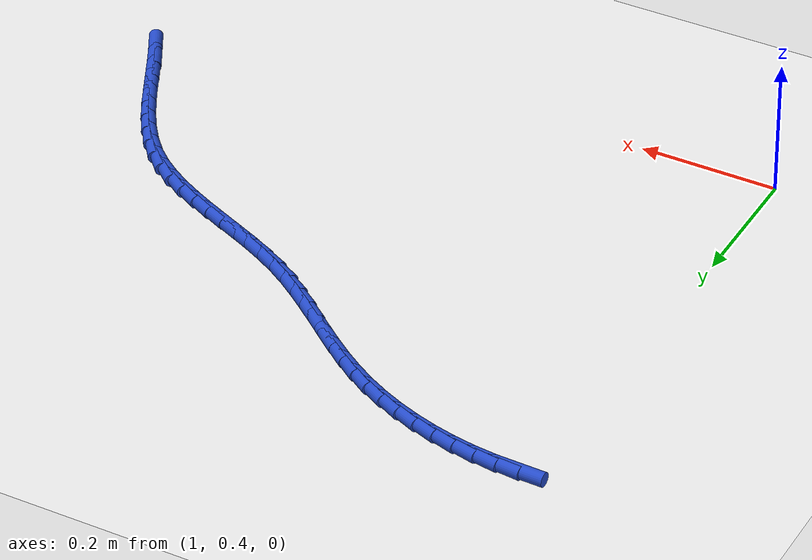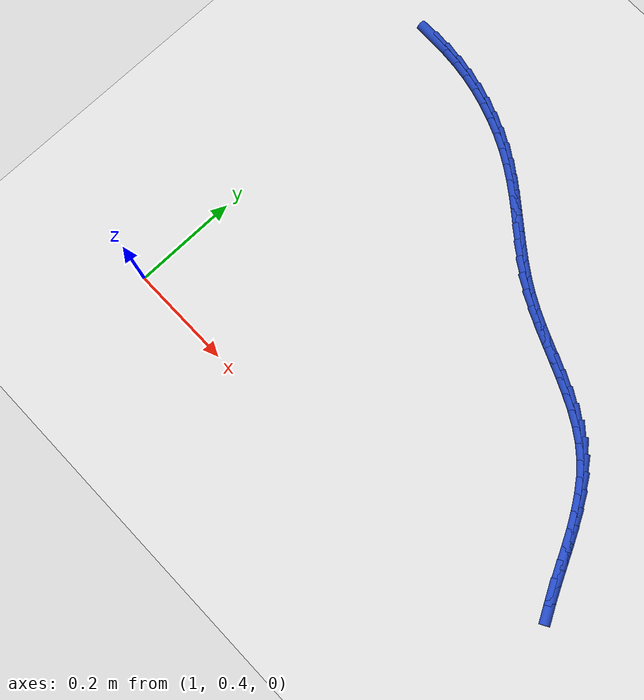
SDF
<sdf version="1.6">
 <world name="default">
  <model name="ground_plane">
   <static>1</static>
   <link name="link">
    <collision name="collision">
     <geometry><plane><normal>0 0 1</normal><size>100 100</size></plane></geometry>
     <surface><friction><ode><mu>100</mu><mu2>50</mu2></ode></friction></surface>
    </collision>
    <visual name="visual">
     <cast_shadows>0</cast_shadows>
     <geometry><plane><normal>0 0 1</normal><size>100 100</size></plane></geometry>
     <material>
      <script><uri>file://media/materials/scripts/gazebo.material</uri><name>Gazebo/WhiteGlow</name></script>
     </material>
    </visual>
   </link>
  </model>
  <model name="line">
   <link name="link_52">
    <pose>1.0297403531845026 1.1076743034539662 0.01 0 1.57 -0.023947935337501752</pose>
    <collision name="collision">
     <geometry><cylinder><radius>0.01</radius><length>0.08</length></cylinder></geometry>
    </collision>
    <visual name="visual">
     <material>
      <script><name>Gazebo/Blue</name><uri>file://media/materials/scripts/gazebo.material</uri></script>
     </material>
     <geometry><cylinder><radius>0.01</radius><length>0.08</length></cylinder></geometry>
    </visual>
   </link>
   <link name="link_53">
    <pose>1.0613806124697045 1.1069164396858013 0.01 0 1.57 -0.09263512583752934</pose>
    <collision name="collision">
     <geometry><cylinder><radius>0.01</radius><length>0.08</length></cylinder></geometry>
    </collision>
    <visual name="visual">
     <material>
      <script><name>Gazebo/Blue</name><uri>file://media/materials/scripts/gazebo.material</uri></script>
     </material>
     <geometry><cylinder><radius>0.01</radius><length>0.08</length></cylinder></geometry>
    </visual>
   </link>
   <link name="link_54">
    <pose>1.093153422103452 1.103964713449809 0.01 0 1.57 -0.15829118914416004</pose>
    <collision name="collision">
     <geometry><cylinder><radius>0.01</radius><length>0.08</length></cylinder></geometry>
    </collision>
    <visual name="visual">
     <material>
      <script><name>Gazebo/Blue</name><uri>file://media/materials/scripts/gazebo.material</uri></script>
     </material>
     <geometry><cylinder><radius>0.01</radius><length>0.08</length></cylinder></geometry>
    </visual>
   </link>
   <link name="link_55">
    <pose>1.124867034798142 1.0989023763803092 0.01 0 1.57 -0.22163496721484707</pose>
    <collision name="collision">
     <geometry><cylinder><radius>0.01</radius><length>0.08</length></cylinder></geometry>
    </collision>
    <visual name="visual">
     <material>
      <script><name>Gazebo/Blue</name><uri>file://media/materials/scripts/gazebo.material</uri></script>
     </material>
     <geometry><cylinder><radius>0.01</radius><length>0.08</length></cylinder></geometry>
    </visual>
   </link>
   <link name="link_56">
    <pose>1.1563297032661723 1.091812680111622 0.01 0 1.57 -0.2833873491306156</pose>
    <collision name="collision">
     <geometry><cylinder><radius>0.01</radius><length>0.08</length></cylinder></geometry>
    </collision>
    <visual name="visual">
     <material>
      <script><name>Gazebo/Blue</name><uri>file://media/materials/scripts/gazebo.material</uri></script>
     </material>
     <geometry><cylinder><radius>0.01</radius><length>0.08</length></cylinder></geometry>
    </visual>
   </link>
   <link name="link_57">
    <pose>1.1873496802199381 1.0827788762780668 0.01 0 1.57 -0.34426916223466975</pose>
    <collision name="collision">
     <geometry><cylinder><radius>0.01</radius><length>0.08</length></cylinder></geometry>
    </collision>
    <visual name="visual">
     <material>
      <script><name>Gazebo/Blue</name><uri>file://media/materials/scripts/gazebo.material</uri></script>
     </material>
     <geometry><cylinder><radius>0.01</radius><length>0.08</length></cylinder></geometry>
    </visual>
   </link>
   <link name="link_58">
    <pose>1.2177352183718386 1.0718842165139653 0.01 0 1.57 -0.40500525535311727</pose>
    <collision name="collision">
     <geometry><cylinder><radius>0.01</radius><length>0.08</length></cylinder></geometry>
    </collision>
    <visual name="visual">
     <material>
      <script><name>Gazebo/Blue</name><uri>file://media/materials/scripts/gazebo.material</uri></script>
     </material>
     <geometry><cylinder><radius>0.01</radius><length>0.08</length></cylinder></geometry>
    </visual>
   </link>
   <link name="link_59">
    <pose>1.2472945704342693 1.0592119524536365 0.01 0 1.57 -0.4663322243100996</pose>
    <collision name="collision">
     <geometry><cylinder><radius>0.01</radius><length>0.08</length></cylinder></geometry>
    </collision>
    <visual name="visual">
     <material>
      <script><name>Gazebo/Blue</name><uri>file://media/materials/scripts/gazebo.material</uri></script>
     </material>
     <geometry><cylinder><radius>0.01</radius><length>0.08</length></cylinder></geometry>
    </visual>
   </link>
   <link name="link_60">
    <pose>1.2758359891196285 1.044845335731401 0.01 0 1.57 -0.5289509135889633</pose>
    <collision name="collision">
     <geometry><cylinder><radius>0.01</radius><length>0.08</length></cylinder></geometry>
    </collision>
    <visual name="visual">
     <material>
      <script><name>Gazebo/Blue</name><uri>file://media/materials/scripts/gazebo.material</uri></script>
     </material>
     <geometry><cylinder><radius>0.01</radius><length>0.08</length></cylinder></geometry>
    </visual>
   </link>
   <link name="link_61">
    <pose>1.3031695011801545 1.028868661734508 0.01 0 1.57 -0.5879392882483317</pose>
    <collision name="collision">
     <geometry><cylinder><radius>0.01</radius><length>0.08</length></cylinder></geometry>
    </collision>
    <visual name="visual">
     <material>
      <script><name>Gazebo/Blue</name><uri>file://media/materials/scripts/gazebo.material</uri></script>
     </material>
     <geometry><cylinder><radius>0.01</radius><length>0.08</length></cylinder></geometry>
    </visual>
   </link>
   <link name="link_62">
    <pose>1.3292759695310825 1.0114667369781303 0.01 0 1.57 -0.6327775586561226</pose>
    <collision name="collision">
     <geometry><cylinder><radius>0.01</radius><length>0.08</length></cylinder></geometry>
    </collision>
    <visual name="visual">
     <material>
      <script><name>Gazebo/Blue</name><uri>file://media/materials/scripts/gazebo.material</uri></script>
     </material>
     <geometry><cylinder><radius>0.01</radius><length>0.08</length></cylinder></geometry>
    </visual>
   </link>
   <link name="link_63">
    <pose>1.3544467552334647 0.9930070489643389 0.01 0 1.57 -0.6617763972199897</pose>
    <collision name="collision">
     <geometry><cylinder><radius>0.01</radius><length>0.08</length></cylinder></geometry>
    </collision>
    <visual name="visual">
     <material>
      <script><name>Gazebo/Blue</name><uri>file://media/materials/scripts/gazebo.material</uri></script>
     </material>
     <geometry><cylinder><radius>0.01</radius><length>0.08</length></cylinder></geometry>
    </visual>
   </link>
   <link name="link_64">
    <pose>1.379006091449195 0.9738764254325137 0.01 0 1.57 -0.6746664620363154</pose>
    <collision name="collision">
     <geometry><cylinder><radius>0.01</radius><length>0.08</length></cylinder></geometry>
    </collision>
    <visual name="visual">
     <material>
      <script><name>Gazebo/Blue</name><uri>file://media/materials/scripts/gazebo.material</uri></script>
     </material>
     <geometry><cylinder><radius>0.01</radius><length>0.08</length></cylinder></geometry>
    </visual>
   </link>
   <link name="link_65">
    <pose>1.4032782113401683 0.9544616941220333 0.01 0 1.57 -0.6713379799891075</pose>
    <collision name="collision">
     <geometry><cylinder><radius>0.01</radius><length>0.08</length></cylinder></geometry>
    </collision>
    <visual name="visual">
     <material>
      <script><name>Gazebo/Blue</name><uri>file://media/materials/scripts/gazebo.material</uri></script>
     </material>
     <geometry><cylinder><radius>0.01</radius><length>0.08</length></cylinder></geometry>
    </visual>
   </link>
   <link name="link_66">
    <pose>1.427587348068279 0.9351496827722756 0.01 0 1.57 -0.6517426442098071</pose>
    <collision name="collision">
     <geometry><cylinder><radius>0.01</radius><length>0.08</length></cylinder></geometry>
    </collision>
    <visual name="visual">
     <material>
      <script><name>Gazebo/Blue</name><uri>file://media/materials/scripts/gazebo.material</uri></script>
     </material>
     <geometry><cylinder><radius>0.01</radius><length>0.08</length></cylinder></geometry>
    </visual>
   </link>
   <link name="link_67">
    <pose>1.4522577347954202 0.9163272191226197 0.01 0 1.57 -0.6159207751072725</pose>
    <collision name="collision">
     <geometry><cylinder><radius>0.01</radius><length>0.08</length></cylinder></geometry>
    </collision>
    <visual name="visual">
     <material>
      <script><name>Gazebo/Blue</name><uri>file://media/materials/scripts/gazebo.material</uri></script>
     </material>
     <geometry><cylinder><radius>0.01</radius><length>0.08</length></cylinder></geometry>
    </visual>
   </link>
   <link name="link_68">
    <pose>1.477613604683487 0.8983811309124442 0.01 0 1.57 -0.5641545823564459</pose>
    <collision name="collision">
     <geometry><cylinder><radius>0.01</radius><length>0.08</length></cylinder></geometry>
    </collision>
    <visual name="visual">
     <material>
      <script><name>Gazebo/Blue</name><uri>file://media/materials/scripts/gazebo.material</uri></script>
     </material>
     <geometry><cylinder><radius>0.01</radius><length>0.08</length></cylinder></geometry>
    </visual>
   </link>
   <link name="link_69">
    <pose>1.5039791908943738 0.8816982458811271 0.01 0 1.57 -0.5023420362251353</pose>
    <collision name="collision">
     <geometry><cylinder><radius>0.01</radius><length>0.08</length></cylinder></geometry>
    </collision>
    <visual name="visual">
     <material>
      <script><name>Gazebo/Blue</name><uri>file://media/materials/scripts/gazebo.material</uri></script>
     </material>
     <geometry><cylinder><radius>0.01</radius><length>0.08</length></cylinder></geometry>
    </visual>
   </link>
   <link name="link_70">
    <pose>1.5315708380627264 0.8665408462534969 0.01 0 1.57 -0.4533530131407078</pose>
    <collision name="collision">
     <geometry><cylinder><radius>0.01</radius><length>0.08</length></cylinder></geometry>
    </collision>
    <visual name="visual">
     <material>
      <script><name>Gazebo/Blue</name><uri>file://media/materials/scripts/gazebo.material</uri></script>
     </material>
     <geometry><cylinder><radius>0.01</radius><length>0.08</length></cylinder></geometry>
    </visual>
   </link>
   <link name="link_71">
    <pose>1.5601323743781133 0.8526257456555674 0.01 0 1.57 -0.4225574086660792</pose>
    <collision name="collision">
     <geometry><cylinder><radius>0.01</radius><length>0.08</length></cylinder></geometry>
    </collision>
    <visual name="visual">
     <material>
      <script><name>Gazebo/Blue</name><uri>file://media/materials/scripts/gazebo.material</uri></script>
     </material>
     <geometry><cylinder><radius>0.01</radius><length>0.08</length></cylinder></geometry>
    </visual>
   </link>
   <link name="link_72">
    <pose>1.5892783046387884 0.8395204679906594 0.01 0 1.57 -0.409247569291799</pose>
    <collision name="collision">
     <geometry><cylinder><radius>0.01</radius><length>0.08</length></cylinder></geometry>
    </collision>
    <visual name="visual">
     <material>
      <script><name>Gazebo/Blue</name><uri>file://media/materials/scripts/gazebo.material</uri></script>
     </material>
     <geometry><cylinder><radius>0.01</radius><length>0.08</length></cylinder></geometry>
    </visual>
   </link>
   <link name="link_73">
    <pose>1.6186231303814946 0.8267925333970341 0.01 0 1.57 -0.41316866610967945</pose>
    <collision name="collision">
     <geometry><cylinder><radius>0.01</radius><length>0.08</length></cylinder></geometry>
    </collision>
    <visual name="visual">
     <material>
      <script><name>Gazebo/Blue</name><uri>file://media/materials/scripts/gazebo.material</uri></script>
     </material>
     <geometry><cylinder><radius>0.01</radius><length>0.08</length></cylinder></geometry>
    </visual>
   </link>
   <link name="link_74">
    <pose>1.6477813531429721 0.8140094620129519 0.01 0 1.57 -0.43462878144800776</pose>
    <collision name="collision">
     <geometry><cylinder><radius>0.01</radius><length>0.08</length></cylinder></geometry>
    </collision>
    <visual name="visual">
     <material>
      <script><name>Gazebo/Blue</name><uri>file://media/materials/scripts/gazebo.material</uri></script>
     </material>
     <geometry><cylinder><radius>0.01</radius><length>0.08</length></cylinder></geometry>
    </visual>
   </link>
   <link name="link_75">
    <pose>1.6763674744599635 0.8007387739766741 0.01 0 1.57 -0.47449054257750406</pose>
    <collision name="collision">
     <geometry><cylinder><radius>0.01</radius><length>0.08</length></cylinder></geometry>
    </collision>
    <visual name="visual">
     <material>
      <script><name>Gazebo/Blue</name><uri>file://media/materials/scripts/gazebo.material</uri></script>
     </material>
     <geometry><cylinder><radius>0.01</radius><length>0.08</length></cylinder></geometry>
    </visual>
   </link>
   <link name="link_76">
    <pose>1.703995995869212 0.7865479894264616 0.01 0 1.57 -0.5340201581267852</pose>
    <collision name="collision">
     <geometry><cylinder><radius>0.01</radius><length>0.08</length></cylinder></geometry>
    </collision>
    <visual name="visual">
     <material>
      <script><name>Gazebo/Blue</name><uri>file://media/materials/scripts/gazebo.material</uri></script>
     </material>
     <geometry><cylinder><radius>0.01</radius><length>0.08</length></cylinder></geometry>
    </visual>
   </link>
   <link name="link_77">
    <pose>1.7302814189074565 0.7710046285005753 0.01 0 1.57 -0.6145049385600216</pose>
    <collision name="collision">
     <geometry><cylinder><radius>0.01</radius><length>0.08</length></cylinder></geometry>
    </collision>
    <visual name="visual">
     <material>
      <script><name>Gazebo/Blue</name><uri>file://media/materials/scripts/gazebo.material</uri></script>
     </material>
     <geometry><cylinder><radius>0.01</radius><length>0.08</length></cylinder></geometry>
    </visual>
   </link>
   <link name="link_78">
    <pose>1.7548382451114408 0.7536762113372761 0.01 0 1.57 -0.7163556050083626</pose>
    <collision name="collision">
     <geometry><cylinder><radius>0.01</radius><length>0.08</length></cylinder></geometry>
    </collision>
    <visual name="visual">
     <material>
      <script><name>Gazebo/Blue</name><uri>file://media/materials/scripts/gazebo.material</uri></script>
     </material>
     <geometry><cylinder><radius>0.01</radius><length>0.08</length></cylinder></geometry>
    </visual>
   </link>
   <link name="link_79">
    <pose>1.7772843361249298 0.7341337337130626 0.01 0 1.57 -0.825543942863568</pose>
    <collision name="collision">
     <geometry><cylinder><radius>0.01</radius><length>0.08</length></cylinder></geometry>
    </collision>
    <visual name="visual">
     <material>
      <script><name>Gazebo/Blue</name><uri>file://media/materials/scripts/gazebo.material</uri></script>
     </material>
     <geometry><cylinder><radius>0.01</radius><length>0.08</length></cylinder></geometry>
    </visual>
   </link>
   <link name="link_80">
    <pose>1.7975030339227196 0.7122227997974162 0.01 0 1.57 -0.9179081107924442</pose>
    <collision name="collision">
     <geometry><cylinder><radius>0.01</radius><length>0.08</length></cylinder></geometry>
    </collision>
    <visual name="visual">
     <material>
      <script><name>Gazebo/Blue</name><uri>file://media/materials/scripts/gazebo.material</uri></script>
     </material>
     <geometry><cylinder><radius>0.01</radius><length>0.08</length></cylinder></geometry>
    </visual>
   </link>
   <link name="link_81">
    <pose>1.815830831377919 0.688257745433758 0.01 0 1.57 -0.9906136893802107</pose>
    <collision name="collision">
     <geometry><cylinder><radius>0.01</radius><length>0.08</length></cylinder></geometry>
    </collision>
    <visual name="visual">
     <material>
      <script><name>Gazebo/Blue</name><uri>file://media/materials/scripts/gazebo.material</uri></script>
     </material>
     <geometry><cylinder><radius>0.01</radius><length>0.08</length></cylinder></geometry>
    </visual>
   </link>
   <link name="link_82">
    <pose>1.8326485131741928 0.6625987211700198 0.01 0 1.57 -1.0443120168799647</pose>
    <collision name="collision">
     <geometry><cylinder><radius>0.01</radius><length>0.08</length></cylinder></geometry>
    </collision>
    <visual name="visual">
     <material>
      <script><name>Gazebo/Blue</name><uri>file://media/materials/scripts/gazebo.material</uri></script>
     </material>
     <geometry><cylinder><radius>0.01</radius><length>0.08</length></cylinder></geometry>
    </visual>
   </link>
   <link name="link_83">
    <pose>1.8483368639952045 0.6356058775541347 0.01 0 1.57 -1.0801618992274709</pose>
    <collision name="collision">
     <geometry><cylinder><radius>0.01</radius><length>0.08</length></cylinder></geometry>
    </collision>
    <visual name="visual">
     <material>
      <script><name>Gazebo/Blue</name><uri>file://media/materials/scripts/gazebo.material</uri></script>
     </material>
     <geometry><cylinder><radius>0.01</radius><length>0.08</length></cylinder></geometry>
    </visual>
   </link>
   <link name="link_84">
    <pose>1.863276668524621 0.6076393651340349 0.01 0 1.57 -1.0992855225469809</pose>
    <collision name="collision">
     <geometry><cylinder><radius>0.01</radius><length>0.08</length></cylinder></geometry>
    </collision>
    <visual name="visual">
     <material>
      <script><name>Gazebo/Blue</name><uri>file://media/materials/scripts/gazebo.material</uri></script>
     </material>
     <geometry><cylinder><radius>0.01</radius><length>0.08</length></cylinder></geometry>
    </visual>
   </link>
   <link name="link_85">
    <pose>1.8778487114461069 0.5790593344576522 0.01 0 1.57 -1.1024881988979196</pose>
    <collision name="collision">
     <geometry><cylinder><radius>0.01</radius><length>0.08</length></cylinder></geometry>
    </collision>
    <visual name="visual">
     <material>
      <script><name>Gazebo/Blue</name><uri>file://media/materials/scripts/gazebo.material</uri></script>
     </material>
     <geometry><cylinder><radius>0.01</radius><length>0.08</length></cylinder></geometry>
    </visual>
   </link>
   <link name="link_86">
    <pose>1.8924337774433286 0.5502259360729203 0.01 0 1.57 -1.0901533062514037</pose>
    <collision name="collision">
     <geometry><cylinder><radius>0.01</radius><length>0.08</length></cylinder></geometry>
    </collision>
    <visual name="visual">
     <material>
      <script><name>Gazebo/Blue</name><uri>file://media/materials/scripts/gazebo.material</uri></script>
     </material>
     <geometry><cylinder><radius>0.01</radius><length>0.08</length></cylinder></geometry>
    </visual>
   </link>
   <link name="link_87">
    <pose>1.9074126511999494 0.5214993205277707 0.01 0 1.57 -1.0631349352525097</pose>
    <collision name="collision">
     <geometry><cylinder><radius>0.01</radius><length>0.08</length></cylinder></geometry>
    </collision>
    <visual name="visual">
     <material>
      <script><name>Gazebo/Blue</name><uri>file://media/materials/scripts/gazebo.material</uri></script>
     </material>
     <geometry><cylinder><radius>0.01</radius><length>0.08</length></cylinder></geometry>
    </visual>
   </link>
  </model>
 </world>
</sdf>
